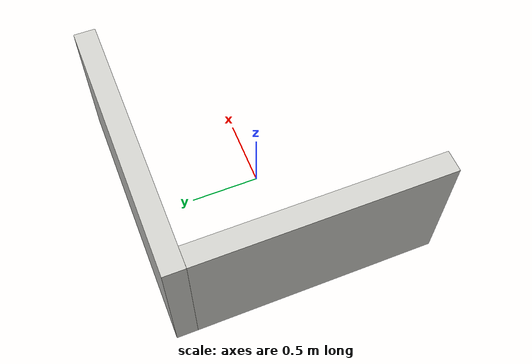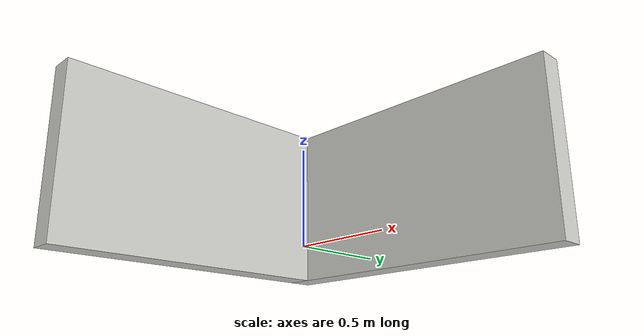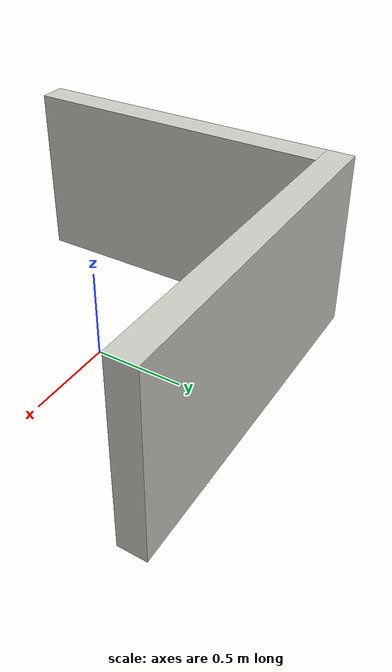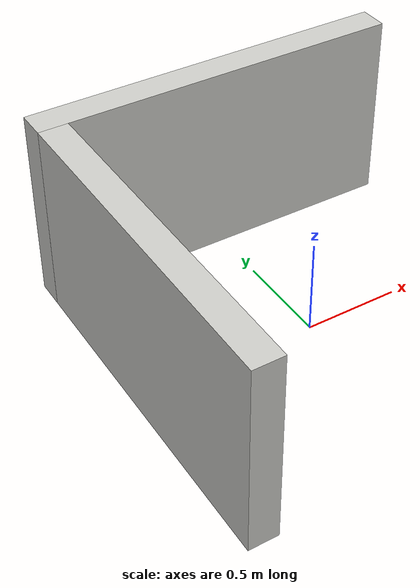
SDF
<?xml version='1.0'?>
<sdf version='1.6'>
  <model name='track_corner'>
    <static>1</static>
    <pose frame=''>0 0 0 0 -0 0</pose>
    <link name='Wall_1'>
      <collision name='Wall_1_Collision'>
        <geometry>
          <box>
            <size>1.75 0.15 1.0</size>
          </box>
        </geometry>
        <pose frame=''>0 0 0.5 0 -0 0</pose>
      </collision>
      <visual name='Wall_1_Visual'>
        <pose frame=''>0 0 0.5 0 -0 0</pose>
        <geometry>
          <box>
            <size>1.75 0.15 1.0</size>
          </box>
        </geometry>
        <material>
          <script>
            <uri>file://media/materials/scripts/gazebo.material</uri>
            <name>Gazebo/CeilingTiled</name>
          </script>
          <ambient>1 0.764706 0.305882 1</ambient>
        </material>
      </visual>
      <pose frame=''>-0.882493 -0.073007 0 0 0 -1.5708</pose>
    </link>
    <link name='Wall_2'>
      <collision name='Wall_2_Collision'>
        <geometry>
          <box>
            <size>1.91042 0.15 1.0</size>
          </box>
        </geometry>
        <pose frame=''>0 0 0.5 0 -0 0</pose>
      </collision>
      <visual name='Wall_2_Visual'>
        <pose frame=''>0 0 0.5 0 -0 0</pose>
        <geometry>
          <box>
            <size>1.91042 0.15 1.0</size>
          </box>
        </geometry>
        <material>
          <script>
            <uri>file://media/materials/scripts/gazebo.material</uri>
            <name>Gazebo/CeilingTiled</name>
          </script>
          <ambient>1 0.764706 0.305882 1</ambient>
        </material>
      </visual>
      <pose frame=''>-0.002284 0.876825 0 0 -0 3.1414</pose>
    </link>
  </model>
</sdf>
